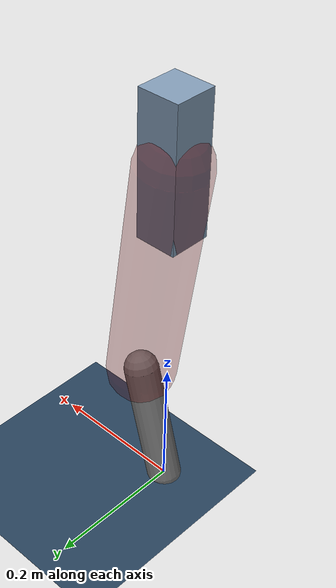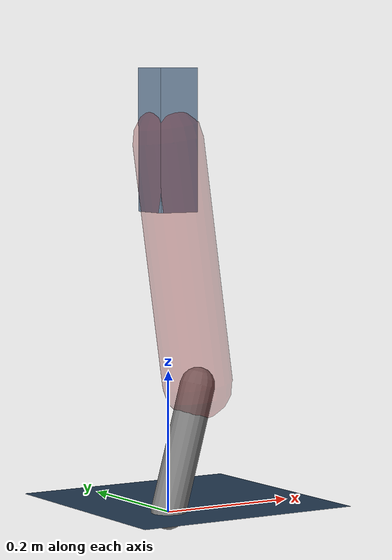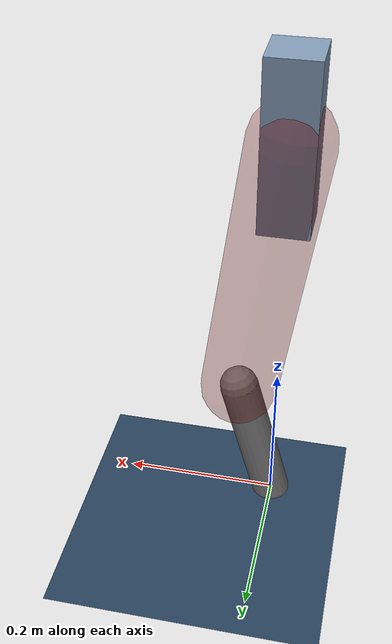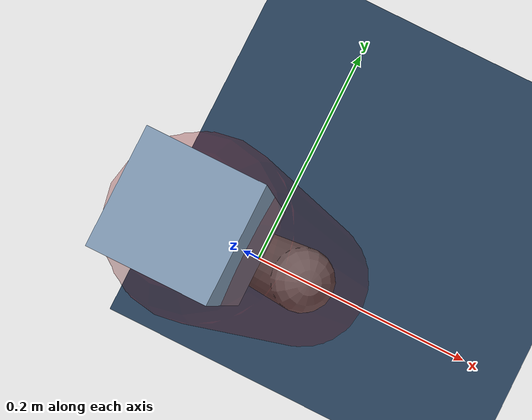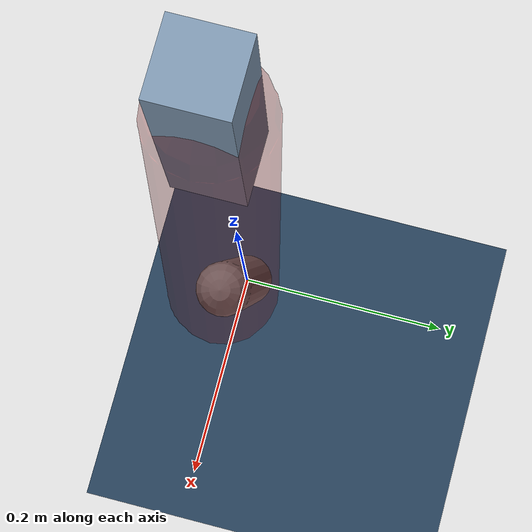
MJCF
<mujoco model="Hopper2D">
	<compiler inertiafromgeom="true" angle="radian" />
	<option timestep="0.001" integrator="implicit" cone="elliptic" solver="Newton" tolerance="1e-10" />

	<default>
		<geom contype="1" conaffinity="1" condim="3" friction="2 0.005 0.0001" solref="0.005 1" />
		<joint limited="true" damping="0.1" />
	</default>

	<asset>
		<texture name="skybox" type="skybox" builtin="gradient" rgb1=".4 .6 .8" rgb2="0 0 0" width="800" height="800" />
		<texture name="grid" type="2d" builtin="checker" rgb1=".1 .2 .3" rgb2=".2 .3 .4" width="300" height="300" mark="edge" markrgb=".2 .3 .4" />
		<material name="ground" texture="grid" texrepeat="1 1" texuniform="true" reflectance="0.1" />
		<material name="leg" rgba="0.5 0.6 0.7 1" />
	</asset>

	<worldbody>

		<geom name="floor" type="plane" size="5 5 0.25" material="ground" />

		<light directional="false" diffuse="0.8 0.8 0.8" specular="0.3 0.3 0.3" pos="0 0 2" dir="0 0 -1" />
		<light mode="targetbodycom" target="base" directional="false" diffuse="0.8 0.8 0.8" specular="0.3 0.3 0.3" pos="0 0 2" dir="0 0 -1" />

		<camera name="fixed" pos="0 -2 1" xyaxes="1 0 0 0 0 1" />
		<camera name="tracking" mode="trackcom" pos="0 -3 1" />

		<body name="root" pos="0 0 0.524595465692717">
			<joint name="slide_x" type="slide" axis="1 0 0" range="-100 100" />
			<joint name="slide_z" type="slide" axis="0 0 1" range="0 10" />

			<body name="base" pos="0 0 0">
				<geom name="torso" type="box" size="0.03 0.03 0.1" mass="2.834" material="leg" />

				<body name="link1" pos="0 0 0" euler="0 1.4306876711848209 0">
					<joint type="hinge" axis="0 -1 0" pos="0 0 0" name="hinge1" limited="true" range="-3.14 3.14" stiffness="0" damping="0.1" />
					<geom name="thigh" type="capsule" fromto="0 0 0 0.3497849675005304 0 0" size="0.05" rgba="0.5 0 0 0.3" mass="1.126097909001485" />

					<body name="link2" pos="0.3497849675005304 0 0" euler="0 0.40759961776013554 0">
						<joint type="hinge" axis="0 -1 0" pos="0 0 0" name="hinge2" limited="true" range="-3.14 3.14" stiffness="0" damping="0.1" />
						<geom name="shank" type="capsule" fromto="0 0 0 0.18481049819218665 0 0" size="0.025" mass="0.388029448372968" />

					</body>
				</body>
			</body>
		</body>
	</worldbody>

	<actuator>
		<motor name="torque1" joint="hinge1" ctrlrange="-57.77781468767807 57.77781468767807" ctrllimited="true" gear="1" />
		<motor name="torque2" joint="hinge2" ctrlrange="-80.42226271767548 80.42226271767548" ctrllimited="true" gear="1" />
	</actuator>
</mujoco>
